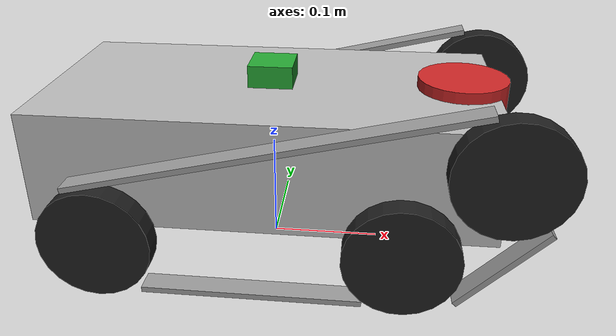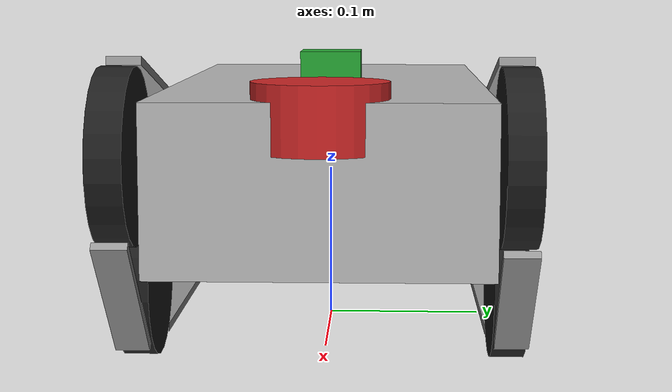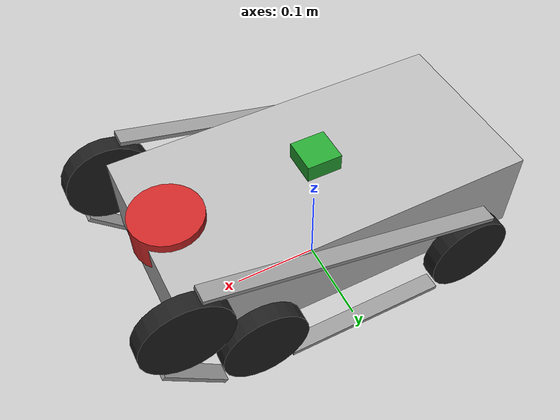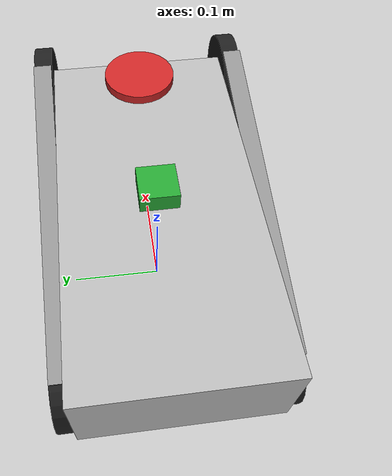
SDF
<?xml version="1.0" ?>

<sdf version="1.5">
  <!-- http://sdformat.org/spec?elem=sensor&ver=1.5 -->
  <model name="tankbot">
    <link name="chassis">
      <pose>0 0 0.11 0 0 0</pose>
      <inertial>
        <pose>0.04650000000000001 0 0  0 0 0</pose>
        <mass>2.0</mass>
        <inertia>
          <ixx>0.012592666666666665</ixx>
          <iyy>0.04085416666666667</iyy>
          <izz>0.043813500000000005</izz>
          <ixy>0</ixy>
          <ixz>0</ixz>
          <iyz>0</iyz>
        </inertia>
      </inertial>
      <collision name="collision">
        <geometry>
          <box>
            <size>0.4 0.2 0.1</size>
          </box>
        </geometry>
      </collision>
      <visual name="visual">
        <geometry>
          <box>
            <size>0.4 0.2 0.1</size>
          </box>
        </geometry>
        <material>
          <script>
            <uri>file://media/materials/scripts/gazebo.material</uri>
            <ambient>0.46 0.46 0.46 1.0</ambient>
  		<diffuse>0.46 0.46 0.46 1.0</diffuse>
  		<specular>0.46 0.46 0.46 1.0</specular>
  		<emissive>0.46 0.46 0.46 1.0</emissive>
          </script>
        </material>
      </visual>
    </link>

    <link name="wheel_fl">
      <pose>
        0.12 0.1100000000000002 0.05
        -1.5707963267948966 -0.08726646259971647 0
      </pose>
      <inertial>
        <mass>0.25</mass>
        <inertia>
          <ixx>0.00018958333333333338</ixx>
          <iyy>0.00018958333333333338</iyy>
          <izz>0.00031250000000000006</izz>
          <ixy>0</ixy>
          <ixz>0</ixz>
          <iyz>0</iyz>
        </inertia>
      </inertial>
      <collision name="collision">
        <geometry>
          <cylinder>
            <radius>0.05</radius>
            <length>0.02</length>
          </cylinder>
        </geometry>
      </collision>
      <visual name="wheel_fl">
        <geometry>
          <cylinder>
            <radius>0.05</radius>
            <length>0.02</length>
          </cylinder>
        </geometry>
        <material>
          <script>
            <uri>file://media/materials/scripts/gazebo.material</uri>
            <name>Gazebo/Black</name>
          </script>
        </material>
      </visual>
    </link>

    <joint name="wheel_fl_drive" type="revolute">
      <parent>chassis</parent>
      <child>wheel_fl</child>
      <axis>
        <xyz>0 0 1</xyz>
      </axis>
    </joint>

    <link name="wheel_fl2">
      <pose>
        0.2 0.1100000000000002 0.13
        -1.5707963267948966 -0.08726646259971647 0
      </pose>
      <inertial>
        <mass>0.25</mass>
        <inertia>
          <ixx>0.00018958333333333338</ixx>
          <iyy>0.00018958333333333338</iyy>
          <izz>0.00031250000000000006</izz>
          <ixy>0</ixy>
          <ixz>0</ixz>
          <iyz>0</iyz>
        </inertia>
      </inertial>
      <collision name="collision">
        <geometry>
          <cylinder>
            <radius>0.05</radius>
            <length>0.02</length>
          </cylinder>
        </geometry>
      </collision>
      <visual name="visual">
        <geometry>
          <cylinder>
            <radius>0.05</radius>
            <length>0.02</length>
          </cylinder>
        </geometry>
        <material>
          <script>
            <uri>file://media/materials/scripts/gazebo.material</uri>
            <name>Gazebo/Black</name>
          </script>
        </material>
      </visual>
    </link>

    <joint name="wheel_fl2_drive" type="revolute">
      <parent>chassis</parent>
      <child>wheel_fl2</child>
      <axis>
        <xyz>0 0 1</xyz>
      </axis>
    </joint>

    <link name="chain_l_up">
      <pose>
        0.0098 0.11 0.142
        0.0 -0.23 0.0
      </pose>
      <gravity>0</gravity>
      <collision name="collision">
        <geometry>
          <box>
            <size>0.35 0.02 0.005</size>
          </box>
        </geometry>
      </collision>
      <visual name="visual">
        <geometry>
          <box>
            <size>0.35 0.02 0.005</size>
          </box>
        </geometry>
        <material>
          <script>
            <uri>file://media/materials/scripts/gazebo.material</uri>
            <name>Gazebo/Grey</name>
          </script>
        </material>
      </visual>
    </link>

    <link name="chain_l_down">
      <pose>
        -0.006 0.11 0.008
        0.0 0.0 0.0
      </pose>
      <gravity>0</gravity>
      <collision name="collision">
        <geometry>
          <box>
            <size>0.19 0.02 0.005</size>
          </box>
        </geometry>
      </collision>
      <visual name="visual">
        <geometry>
          <box>
            <size>0.19 0.02 0.005</size>
          </box>
        </geometry>
        <material>
          <script>
            <uri>file://media/materials/scripts/gazebo.material</uri>
            <name>Gazebo/Grey</name>
          </script>
        </material>
      </visual>
    </link>

    <link name="chain_l_front">
      <pose>
        0.2 0.11 0.05
        0.0 -0.8 0.0
      </pose>
      <gravity>0</gravity>
      <collision name="collision">
        <geometry>
          <box>
            <size>0.09 0.02 0.005</size>
          </box>
        </geometry>
      </collision>
      <visual name="visual">
        <geometry>
          <box>
            <size>0.09 0.02 0.005</size>
          </box>
        </geometry>
        <material>
          <script>
            <uri>file://media/materials/scripts/gazebo.material</uri>
            <name>Gazebo/Grey</name>
          </script>
        </material>
      </visual>
    </link>

    <link name="chain_r_up">
      <pose>
        0.0098 -0.11 0.142
        0 -0.23 0.0
      </pose>
      <gravity>0</gravity>
      <collision name="collision">
        <geometry>
          <box>
            <size>0.35 0.02 0.005</size>
          </box>
        </geometry>
      </collision>
      <visual name="visual">
        <geometry>
          <box>
            <size>0.35 0.02 0.005</size>
          </box>
        </geometry>
        <material>
          <script>
            <uri>file://media/materials/scripts/gazebo.material</uri>
            <name>Gazebo/Grey</name>
          </script>
        </material>
      </visual>
    </link>

    <link name="chain_r_down">
      <pose>
        -0.006 -0.11 0.008
        0.0 0.0 0.0
      </pose>
      <gravity>0</gravity>
      <collision name="collision">
        <geometry>
          <box>
            <size>0.19 0.02 0.005</size>
          </box>
        </geometry>
      </collision>
      <visual name="visual">
        <geometry>
          <box>
            <size>0.19 0.02 0.005</size>
          </box>
        </geometry>
        <material>
          <script>
            <uri>file://media/materials/scripts/gazebo.material</uri>
            <name>Gazebo/Grey</name>
          </script>
        </material>
      </visual>
    </link>

    <link name="chain_r_front">
      <pose>
        0.2 -0.11 0.05
        0.0 -0.8 0.0
      </pose>
      <gravity>0</gravity>
      <collision name="collision">
        <geometry>
          <box>
            <size>0.1 0.02 0.005</size>
          </box>
        </geometry>
      </collision>
      <visual name="visual">
        <geometry>
          <box>
            <size>0.1 0.02 0.005</size>
          </box>
        </geometry>
        <material>
          <script>
            <uri>file://media/materials/scripts/gazebo.material</uri>
            <name>Gazebo/Grey</name>
          </script>
        </material>
      </visual>
    </link>

    <joint name="chain_l_up_joint" type="fixed">
      <parent>chassis</parent>
      <child>chain_l_up</child>
    </joint>

    <joint name="chain_r_up_joint" type="fixed">
      <parent>chassis</parent>
      <child>chain_r_up</child>
    </joint>

    <joint name="chain_l_down_joint" type="fixed">
      <parent>chain_l_up</parent>
      <child>chain_l_down</child>
    </joint>

    <joint name="chain_r_down_joint" type="fixed">
      <parent>chain_r_up</parent>
      <child>chain_r_down</child>
    </joint>

    <joint name="chain_l_front_joint" type="fixed">
      <parent>chain_l_down</parent>
      <child>chain_l_front</child>
    </joint>

    <joint name="chain_r_front_joint" type="fixed">
      <parent>chain_r_down</parent>
      <child>chain_r_front</child>
    </joint>

    <link name="wheel_fr">
      <pose>
        0.12 -0.1100000000000002 0.05
        -1.5707963267948966 -0.08726646259971647 0
      </pose>
      <inertial>
        <mass>0.25</mass>
        <inertia>
          <ixx>0.00018958333333333338</ixx>
          <iyy>0.00018958333333333338</iyy>
          <izz>0.00031250000000000006</izz>
          <ixy>0</ixy>
          <ixz>0</ixz>
          <iyz>0</iyz>
        </inertia>
      </inertial>
      <collision name="collision">
        <geometry>
          <cylinder>
            <radius>0.05</radius>
            <length>0.02</length>
          </cylinder>
        </geometry>
      </collision>
      <visual name="visual">
        <geometry>
          <cylinder>
            <radius>0.05</radius>
            <length>0.02</length>
          </cylinder>
        </geometry>
        <material>
          <script>
            <uri>file://media/materials/scripts/gazebo.material</uri>
            <name>Gazebo/Black</name>
          </script>
        </material>
      </visual>
    </link>

    <joint name="wheel_fr_drive" type="revolute">
      <parent>chassis</parent>
      <child>wheel_fr</child>
      <axis>
        <xyz>0 0 1</xyz>
      </axis>
    </joint>

    <link name="wheel_fr2">
      <pose>
        0.2 -0.1100000000000002 0.13
        -1.5707963267948966 -0.08726646259971647 0
      </pose>
      <inertial>
        <mass>0.25</mass>
        <inertia>
          <ixx>0.00018958333333333338</ixx>
          <iyy>0.00018958333333333338</iyy>
          <izz>0.00031250000000000006</izz>
          <ixy>0</ixy>
          <ixz>0</ixz>
          <iyz>0</iyz>
        </inertia>
      </inertial>
      <collision name="collision">
        <geometry>
          <cylinder>
            <radius>0.05</radius>
            <length>0.02</length>
          </cylinder>
        </geometry>
      </collision>
      <visual name="visual">
        <geometry>
          <cylinder>
            <radius>0.05</radius>
            <length>0.02</length>
          </cylinder>
        </geometry>
        <material>
          <script>
            <uri>file://media/materials/scripts/gazebo.material</uri>
            <name>Gazebo/Black</name>
          </script>
        </material>
      </visual>
    </link>

    <joint name="wheel_fr2_drive" type="revolute">
      <parent>chassis</parent>
      <child>wheel_fr2</child>
      <axis>
        <xyz>0 0 1</xyz>
      </axis>
    </joint>

    <link name="wheel_rl">
      <pose>
       -0.1395 0.11100000000000002 0.05
       -1.5707963267948966 0 0
      </pose>
      <inertial>
        <mass>0.25</mass>
        <inertia>
          <ixx>0.00018958333333333338</ixx>
          <iyy>0.00018958333333333338</iyy>
          <izz>0.00031250000000000006</izz>
          <ixy>0</ixy>
          <ixz>0</ixz>
          <iyz>0</iyz>
        </inertia>
      </inertial>
      <collision name="collision">
        <geometry>
          <cylinder>
            <radius>0.05</radius>
            <length>0.02</length>
          </cylinder>
        </geometry>
      </collision>
      <visual name="visual">
        <geometry>
          <cylinder>
            <radius>0.05</radius>
            <length>0.02</length>
          </cylinder>
        </geometry>
        <material>
          <script>
            <uri>file://media/materials/scripts/gazebo.material</uri>
            <name>Gazebo/Black</name>
          </script>
        </material>
      </visual>
    </link>
    <joint name="wheel_rl_drive" type="revolute">
      <parent>chassis</parent>
      <child>wheel_rl</child>
      <axis>
        <xyz>0 0 1</xyz>
      </axis>
    </joint>

    <link name="wheel_rr">
      <pose>
       -0.1395 -0.1100000000000002 0.05
       -1.5707963267948966 0 0
      </pose>
      <inertial>
        <mass>0.25</mass>
        <inertia>
          <ixx>0.00018958333333333338</ixx>
          <iyy>0.00018958333333333338</iyy>
          <izz>0.00031250000000000006</izz>
          <ixy>0</ixy>
          <ixz>0</ixz>
          <iyz>0</iyz>
        </inertia>
      </inertial>
      <collision name="collision">
        <geometry>
          <cylinder>
            <radius>0.05</radius>
            <length>0.02</length>
          </cylinder>
        </geometry>
      </collision>
      <visual name="visual">
        <geometry>
          <cylinder>
            <radius>0.05</radius>
            <length>0.02</length>
          </cylinder>
        </geometry>
        <material>
          <script>
            <uri>file://media/materials/scripts/gazebo.material</uri>
            <name>Gazebo/Black</name>
          </script>
        </material>
      </visual>
    </link>
    <joint name="wheel_rr_drive" type="revolute">
      <parent>chassis</parent>
      <child>wheel_rr</child>
      <axis>
        <xyz>0 0 1</xyz>
      </axis>
    </joint>

    <include>
      <uri>model://ultrasonic_sensor</uri>
      <pose>
        0.17 0.0 0.15
        0.0 0.0 0.0
      </pose>
    </include>

    <joint name="sonar_joint" type="fixed">
      <child>ultrasonic_sensor::link</child>
      <parent>chassis</parent>
    </joint>

    <include>
      <uri>model://noisy_imu</uri>
      <pose>
        0.0 0.0 0.16
        0.0 0.0 0.0
      </pose>
    </include>

    <joint name="imu_joint" type="fixed">
      <child>imu::link</child>
      <parent>chassis</parent>
    </joint>

  </model>
</sdf>

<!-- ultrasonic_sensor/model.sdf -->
<sdf version="1.7">
  <model name="ultrasonic_sensor">
    <pose>0 0 0.02 0 0 0</pose>
    <link name="link">

      <inertial>
        <mass>0.1</mass>
      </inertial>

      <visual name="visual">
        <geometry>
          <cylinder>
            <radius>0.04</radius>
            <length>0.04</length>
          </cylinder>
        </geometry>
        <material>
          <script>
            <uri>file://media/materials/scripts/gazebo.material</uri>
            <name>Gazebo/Red</name>
          </script>
        </material>
      </visual>

      <collision name="collision-base">
        <pose>0 0 -0.0145 0 0 0</pose>
        <geometry>
          <box>
            <size>0.05 0.05 0.041</size>
          </box>
        </geometry>
      </collision>

      <collision name="collision-top">
        <pose>0 0 0.0205 0 0 0</pose>
        <geometry>
          <cylinder>
            <radius>0.021</radius>
            <length>0.029</length>
          </cylinder>
        </geometry>
      </collision>

      <sensor name="sonar" type="sonar">
        <pose>0.04 0 0 0 1.5 3.14</pose>
        <sonar>
          <min>0</min>
          <max>3</max>
          <radius>0.3</radius>
        </sonar>
        <plugin name="sonar" filename="libSonarPlugin.so" />
        <always_on>1</always_on>
        <update_rate>30</update_rate>
        <visualize>true</visualize>
      </sensor>

    </link>
  </model>
</sdf>

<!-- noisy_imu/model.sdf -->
<sdf version="1.6">
  <model name="imu">
    <link name="link">
      <inertial>
        <mass>0.05</mass>
      </inertial>
      <visual name="visual">
        <geometry>
          <box>
            <size>0.04 0.04 0.04</size>
          </box>
        </geometry>
        <material>
          <script>
            <uri>file://media/materials/scripts/gazebo.material</uri>
            <name>Gazebo/Green</name>
          </script>
        </material>
      </visual>
      <collision name="collision">
        <geometry>
          <box>
            <size>0.04 0.04 0.04</size>
          </box>
        </geometry>
      </collision>
      <sensor name="imu" type="imu">
        <imu>
          <angular_velocity>
            <x>
              <noise type="gaussian">
                <mean>0.0</mean>
                <stddev>2e-4</stddev>
                <bias_mean>0.0000075</bias_mean>
                <bias_stddev>0.0000008</bias_stddev>
              </noise>
            </x>
            <y>
              <noise type="gaussian">
                <mean>0.0</mean>
                <stddev>2e-4</stddev>
                <bias_mean>0.0000075</bias_mean>
                <bias_stddev>0.0000008</bias_stddev>
              </noise>
            </y>
            <z>
              <noise type="gaussian">
                <mean>0.0</mean>
                <stddev>2e-4</stddev>
                <bias_mean>0.0000075</bias_mean>
                <bias_stddev>0.0000008</bias_stddev>
              </noise>
            </z>
          </angular_velocity>
          <linear_acceleration>
            <x>
              <noise type="gaussian">
                <mean>0.0</mean>
                <stddev>1.7e-2</stddev>
                <bias_mean>0.1</bias_mean>
                <bias_stddev>0.001</bias_stddev>
              </noise>
            </x>
            <y>
              <noise type="gaussian">
                <mean>0.0</mean>
                <stddev>1.7e-2</stddev>
                <bias_mean>0.1</bias_mean>
                <bias_stddev>0.001</bias_stddev>
              </noise>
            </y>
            <z>
              <noise type="gaussian">
                <mean>0.0</mean>
                <stddev>1.7e-2</stddev>
                <bias_mean>0.1</bias_mean>
                <bias_stddev>0.001</bias_stddev>
              </noise>
            </z>
          </linear_acceleration>
        </imu>
        <always_on>1</always_on>
        <update_rate>30</update_rate>
      </sensor>
    </link>
  </model>
</sdf>
